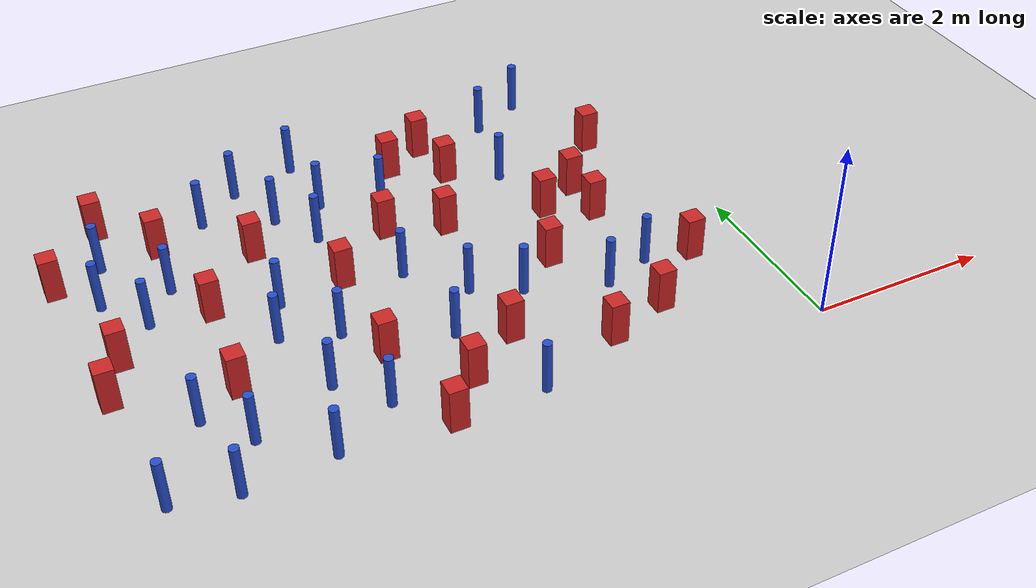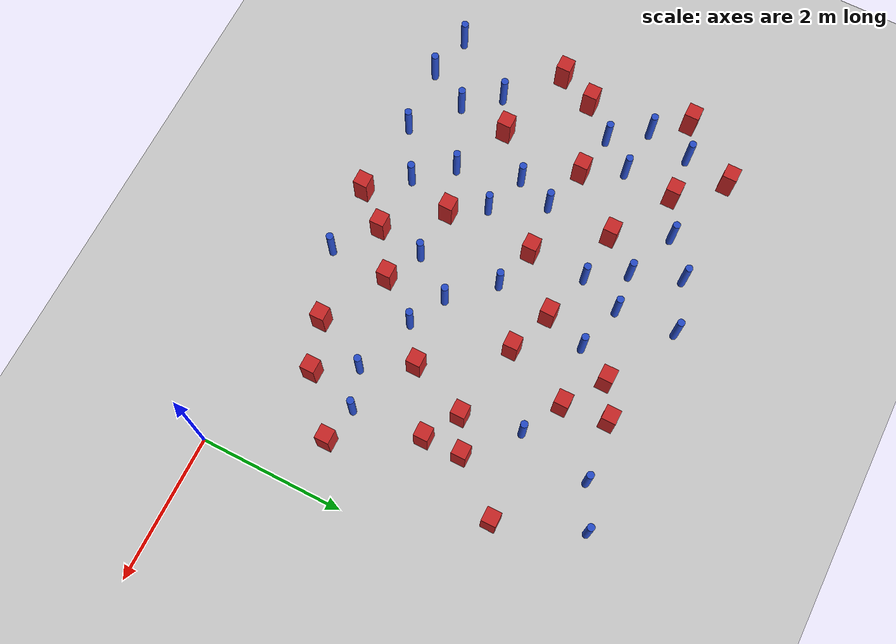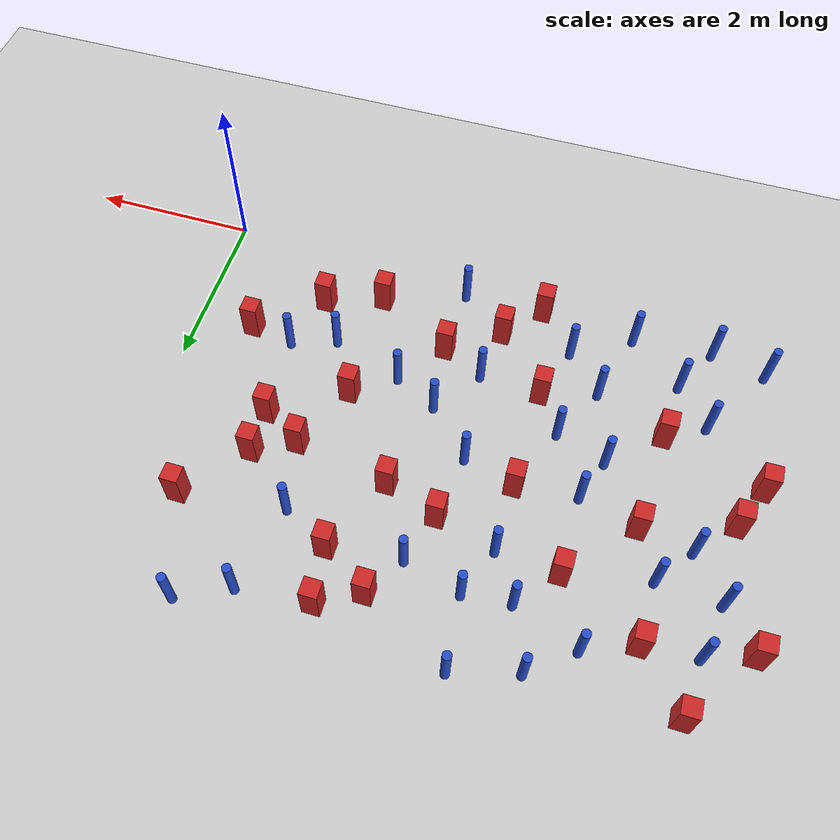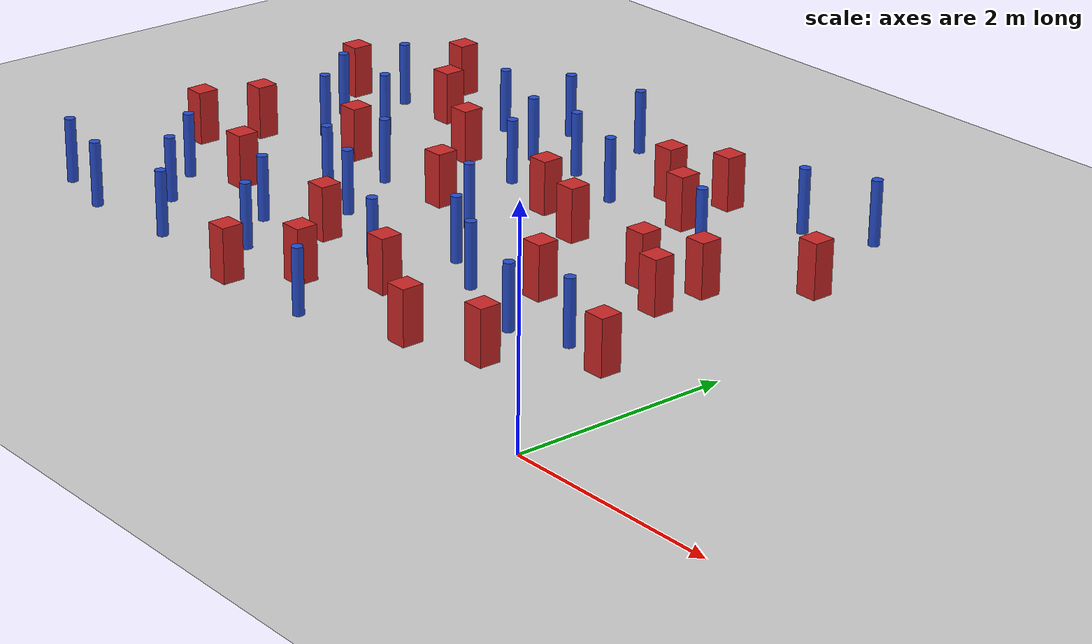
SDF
<sdf version="1.6">
 <world name="default">
  <model name="ground_plane">
   <static>1</static>
   <link name="link">
    <collision name="collision">
     <geometry><plane><normal>0 0 1</normal><size>100 100</size></plane></geometry>
     <surface><friction><ode><mu>100</mu><mu2>50</mu2></ode></friction></surface>
    </collision>
    <visual name="visual">
     <cast_shadows>0</cast_shadows>
     <geometry><plane><normal>0 0 1</normal><size>100 100</size></plane></geometry>
     <material>
      <ambient>1.0 1.0 1.0 1.0</ambient>
      <diffuse>0.8 0.8 0.8 1.0</diffuse>
      <specular>0.01 0.01 0.01 1.000000</specular>
     </material>
    </visual>
   </link>
  </model>
  <model name="square_post_obstacle1">
   <static>true</static>
   <pose>-1.42426274399 0.826658282085 8.22691968438e-08 7.2212513382e-06 -7.54495500217e-07 2.29674213826e-05</pose>
   <link name="link">
    <pose>0 0 0.25 0 -0 0</pose>
    <inertial>
     <mass>100</mass>
     <inertia>
      <ixx>0.166667</ixx>
      <ixy>0</ixy>
      <ixz>0</ixz>
      <iyy>0.166667</iyy>
      <iyz>0</iyz>
      <izz>0.166667</izz>
     </inertia>
    </inertial>
    <collision name="collision"><geometry><box><size>.2 .2 .5</size></box></geometry></collision>
    <visual name="visual">
     <geometry><box><size>.2 .2 .5</size></box></geometry>
     <material>
      <script><name>Gazebo/Red</name><uri>file://media/materials/scripts/gazebo.material</uri></script>
     </material>
    </visual>
   </link>
  </model>
  <model name="pole_obstacle0">
   <static>true</static>
   <pose>-3.10198556302 1.91438541618 2.88873142074e-08 -9.90536689395e-09 4.60219949e-07 -1.20965994953e-07</pose>
   <link name="link">
    <pose>0 0 0.3 0 -0 0</pose>
    <inertial>
     <mass>1</mass>
     <inertia><ixx>0.145833</ixx><ixy>0</ixy><ixz>0</ixz><iyy>0.145833</iyy><iyz>0</iyz><izz>0.125</izz></inertia>
    </inertial>
    <collision name="collision">
     <geometry><cylinder><radius>0.05</radius><length>.6</length></cylinder></geometry>
    </collision>
    <visual name="visual">
     <geometry><cylinder><radius>0.05</radius><length>.6</length></cylinder></geometry>
     <material>
      <script><name>Gazebo/Blue</name><uri>file://media/materials/scripts/gazebo.material</uri></script>
     </material>
    </visual>
   </link>
  </model>
  <model name="square_post_obstacle3">
   <static>true</static>
   <pose>-6.85389334559 1.90299127063 8.22691968438e-08 7.2212513382e-06 -7.54495500217e-07 2.29674213826e-05</pose>
   <link name="link">
    <pose>0 0 0.25 0 -0 0</pose>
    <inertial>
     <mass>100</mass>
     <inertia>
      <ixx>0.166667</ixx>
      <ixy>0</ixy>
      <ixz>0</ixz>
      <iyy>0.166667</iyy>
      <iyz>0</iyz>
      <izz>0.166667</izz>
     </inertia>
    </inertial>
    <collision name="collision"><geometry><box><size>.2 .2 .5</size></box></geometry></collision>
    <visual name="visual">
     <geometry><box><size>.2 .2 .5</size></box></geometry>
     <material>
      <script><name>Gazebo/Red</name><uri>file://media/materials/scripts/gazebo.material</uri></script>
     </material>
    </visual>
   </link>
  </model>
  <model name="pole_obstacle4">
   <static>true</static>
   <pose>-4.5411840801 1.85169963479 2.88873142074e-08 -9.90536689445e-09 4.60219948999e-07 -1.20965994956e-07</pose>
   <link name="link">
    <pose>0 0 0.3 0 -0 0</pose>
    <inertial>
     <mass>1</mass>
     <inertia><ixx>0.145833</ixx><ixy>0</ixy><ixz>0</ixz><iyy>0.145833</iyy><iyz>0</iyz><izz>0.125</izz></inertia>
    </inertial>
    <collision name="collision">
     <geometry><cylinder><radius>0.05</radius><length>.6</length></cylinder></geometry>
    </collision>
    <visual name="visual">
     <geometry><cylinder><radius>0.05</radius><length>.6</length></cylinder></geometry>
     <material>
      <script><name>Gazebo/Blue</name><uri>file://media/materials/scripts/gazebo.material</uri></script>
     </material>
    </visual>
   </link>
  </model>
  <model name="pole_obstacle16">
   <static>true</static>
   <pose>-6.16233238494 1.28427935313 2.88873142074e-08 -9.90536689445e-09 4.60219948999e-07 -1.20965994956e-07</pose>
   <link name="link">
    <pose>0 0 0.3 0 -0 0</pose>
    <inertial>
     <mass>1</mass>
     <inertia><ixx>0.145833</ixx><ixy>0</ixy><ixz>0</ixz><iyy>0.145833</iyy><iyz>0</iyz><izz>0.125</izz></inertia>
    </inertial>
    <collision name="collision">
     <geometry><cylinder><radius>0.05</radius><length>.6</length></cylinder></geometry>
    </collision>
    <visual name="visual">
     <geometry><cylinder><radius>0.05</radius><length>.6</length></cylinder></geometry>
     <material>
      <script><name>Gazebo/Blue</name><uri>file://media/materials/scripts/gazebo.material</uri></script>
     </material>
    </visual>
   </link>
  </model>
  <model name="square_post_obstacle26">
   <static>true</static>
   <pose>-1.76964022569 2.81441040192 8.22691968438e-08 7.2212513382e-06 -7.54495500217e-07 2.29674213826e-05</pose>
   <link name="link">
    <pose>0 0 0.25 0 -0 0</pose>
    <inertial>
     <mass>100</mass>
     <inertia>
      <ixx>0.166667</ixx>
      <ixy>0</ixy>
      <ixz>0</ixz>
      <iyy>0.166667</iyy>
      <iyz>0</iyz>
      <izz>0.166667</izz>
     </inertia>
    </inertial>
    <collision name="collision"><geometry><box><size>.2 .2 .5</size></box></geometry></collision>
    <visual name="visual">
     <geometry><box><size>.2 .2 .5</size></box></geometry>
     <material>
      <script><name>Gazebo/Red</name><uri>file://media/materials/scripts/gazebo.material</uri></script>
     </material>
    </visual>
   </link>
  </model>
  <model name="pole_obstacle19">
   <static>true</static>
   <pose>-5.12947267671 2.06557618258 2.88873142074e-08 -9.90536690245e-09 4.6021994898e-07 -1.20965994966e-07</pose>
   <link name="link">
    <pose>0 0 0.3 0 -0 0</pose>
    <inertial>
     <mass>1</mass>
     <inertia><ixx>0.145833</ixx><ixy>0</ixy><ixz>0</ixz><iyy>0.145833</iyy><iyz>0</iyz><izz>0.125</izz></inertia>
    </inertial>
    <collision name="collision">
     <geometry><cylinder><radius>0.05</radius><length>.6</length></cylinder></geometry>
    </collision>
    <visual name="visual">
     <geometry><cylinder><radius>0.05</radius><length>.6</length></cylinder></geometry>
     <material>
      <script><name>Gazebo/Blue</name><uri>file://media/materials/scripts/gazebo.material</uri></script>
     </material>
    </visual>
   </link>
  </model>
  <model name="pole_obstacle27">
   <static>true</static>
   <pose>-4.79512387402 4.63951117349 2.88873142074e-08 -9.90536690842e-09 4.60219948965e-07 -1.20965994976e-07</pose>
   <link name="link">
    <pose>0 0 0.3 0 -0 0</pose>
    <inertial>
     <mass>1</mass>
     <inertia><ixx>0.145833</ixx><ixy>0</ixy><ixz>0</ixz><iyy>0.145833</iyy><iyz>0</iyz><izz>0.125</izz></inertia>
    </inertial>
    <collision name="collision">
     <geometry><cylinder><radius>0.05</radius><length>.6</length></cylinder></geometry>
    </collision>
    <visual name="visual">
     <geometry><cylinder><radius>0.05</radius><length>.6</length></cylinder></geometry>
     <material>
      <script><name>Gazebo/Blue</name><uri>file://media/materials/scripts/gazebo.material</uri></script>
     </material>
    </visual>
   </link>
  </model>
  <model name="pole_obstacle31">
   <static>true</static>
   <pose>-6.46546573357 3.97374066579 2.88873142074e-08 -9.9053669014e-09 4.60219948982e-07 -1.20965994965e-07</pose>
   <link name="link">
    <pose>0 0 0.3 0 -0 0</pose>
    <inertial>
     <mass>1</mass>
     <inertia><ixx>0.145833</ixx><ixy>0</ixy><ixz>0</ixz><iyy>0.145833</iyy><iyz>0</iyz><izz>0.125</izz></inertia>
    </inertial>
    <collision name="collision">
     <geometry><cylinder><radius>0.05</radius><length>.6</length></cylinder></geometry>
    </collision>
    <visual name="visual">
     <geometry><cylinder><radius>0.05</radius><length>.6</length></cylinder></geometry>
     <material>
      <script><name>Gazebo/Blue</name><uri>file://media/materials/scripts/gazebo.material</uri></script>
     </material>
    </visual>
   </link>
  </model>
  <model name="pole_obstacle36">
   <static>true</static>
   <pose>-1.93711923117 3.62638129155 2.88873142074e-08 -9.90536689791e-09 4.6021994899e-07 -1.20965994959e-07</pose>
   <link name="link">
    <pose>0 0 0.3 0 -0 0</pose>
    <inertial>
     <mass>1</mass>
     <inertia><ixx>0.145833</ixx><ixy>0</ixy><ixz>0</ixz><iyy>0.145833</iyy><iyz>0</iyz><izz>0.125</izz></inertia>
    </inertial>
    <collision name="collision">
     <geometry><cylinder><radius>0.05</radius><length>.6</length></cylinder></geometry>
    </collision>
    <visual name="visual">
     <geometry><cylinder><radius>0.05</radius><length>.6</length></cylinder></geometry>
     <material>
      <script><name>Gazebo/Blue</name><uri>file://media/materials/scripts/gazebo.material</uri></script>
     </material>
    </visual>
   </link>
  </model>
  <model name="square_post_obstacle37">
   <static>true</static>
   <pose>-2.57573918102 4.55098409844 8.22691968438e-08 7.2212513382e-06 -7.54495500217e-07 2.29674213826e-05</pose>
   <link name="link">
    <pose>0 0 0.25 0 -0 0</pose>
    <inertial>
     <mass>100</mass>
     <inertia>
      <ixx>0.166667</ixx>
      <ixy>0</ixy>
      <ixz>0</ixz>
      <iyy>0.166667</iyy>
      <iyz>0</iyz>
      <izz>0.166667</izz>
     </inertia>
    </inertial>
    <collision name="collision"><geometry><box><size>.2 .2 .5</size></box></geometry></collision>
    <visual name="visual">
     <geometry><box><size>.2 .2 .5</size></box></geometry>
     <material>
      <script><name>Gazebo/Red</name><uri>file://media/materials/scripts/gazebo.material</uri></script>
     </material>
    </visual>
   </link>
  </model>
  <model name="pole_obstacle45">
   <static>true</static>
   <pose>-6.71907251581 0.388487332498 2.88873142074e-08 -9.90536689981e-09 4.60219948986e-07 -1.20965994962e-07</pose>
   <link name="link">
    <pose>0 0 0.3 0 -0 0</pose>
    <inertial>
     <mass>1</mass>
     <inertia><ixx>0.145833</ixx><ixy>0</ixy><ixz>0</ixz><iyy>0.145833</iyy><iyz>0</iyz><izz>0.125</izz></inertia>
    </inertial>
    <collision name="collision">
     <geometry><cylinder><radius>0.05</radius><length>.6</length></cylinder></geometry>
    </collision>
    <visual name="visual">
     <geometry><cylinder><radius>0.05</radius><length>.6</length></cylinder></geometry>
     <material>
      <script><name>Gazebo/Blue</name><uri>file://media/materials/scripts/gazebo.material</uri></script>
     </material>
    </visual>
   </link>
  </model>
  <model name="pole_obstacle59">
   <static>true</static>
   <pose>-4.21640281893 3.44719957306 2.88873142074e-08 -9.90536690245e-09 4.6021994898e-07 -1.20965994966e-07</pose>
   <link name="link">
    <pose>0 0 0.3 0 -0 0</pose>
    <inertial>
     <mass>1</mass>
     <inertia><ixx>0.145833</ixx><ixy>0</ixy><ixz>0</ixz><iyy>0.145833</iyy><iyz>0</iyz><izz>0.125</izz></inertia>
    </inertial>
    <collision name="collision">
     <geometry><cylinder><radius>0.05</radius><length>.6</length></cylinder></geometry>
    </collision>
    <visual name="visual">
     <geometry><cylinder><radius>0.05</radius><length>.6</length></cylinder></geometry>
     <material>
      <script><name>Gazebo/Blue</name><uri>file://media/materials/scripts/gazebo.material</uri></script>
     </material>
    </visual>
   </link>
  </model>
  <model name="pole_obstacle63">
   <static>true</static>
   <pose>-4.88427462292 1.19088998244 2.88873142074e-08 -9.90536689445e-09 4.60219948999e-07 -1.20965994956e-07</pose>
   <link name="link">
    <pose>0 0 0.3 0 -0 0</pose>
    <inertial>
     <mass>1</mass>
     <inertia><ixx>0.145833</ixx><ixy>0</ixy><ixz>0</ixz><iyy>0.145833</iyy><iyz>0</iyz><izz>0.125</izz></inertia>
    </inertial>
    <collision name="collision">
     <geometry><cylinder><radius>0.05</radius><length>.6</length></cylinder></geometry>
    </collision>
    <visual name="visual">
     <geometry><cylinder><radius>0.05</radius><length>.6</length></cylinder></geometry>
     <material>
      <script><name>Gazebo/Blue</name><uri>file://media/materials/scripts/gazebo.material</uri></script>
     </material>
    </visual>
   </link>
  </model>
  <model name="square_post_obstacle66">
   <static>true</static>
   <pose>-5.84215359301 4.01528533652 8.22691968438e-08 7.22125133819e-06 -7.54495500217e-07 2.29674213826e-05</pose>
   <link name="link">
    <pose>0 0 0.25 0 -0 0</pose>
    <inertial>
     <mass>100</mass>
     <inertia>
      <ixx>0.166667</ixx>
      <ixy>0</ixy>
      <ixz>0</ixz>
      <iyy>0.166667</iyy>
      <iyz>0</iyz>
      <izz>0.166667</izz>
     </inertia>
    </inertial>
    <collision name="collision"><geometry><box><size>.2 .2 .5</size></box></geometry></collision>
    <visual name="visual">
     <geometry><box><size>.2 .2 .5</size></box></geometry>
     <material>
      <script><name>Gazebo/Red</name><uri>file://media/materials/scripts/gazebo.material</uri></script>
     </material>
    </visual>
   </link>
  </model>
  <model name="square_post_obstacle71">
   <static>true</static>
   <pose>-3.51349161769 3.2437419657 8.22691968438e-08 7.2212513382e-06 -7.54495500217e-07 2.29674213826e-05</pose>
   <link name="link">
    <pose>0 0 0.25 0 -0 0</pose>
    <inertial>
     <mass>100</mass>
     <inertia>
      <ixx>0.166667</ixx>
      <ixy>0</ixy>
      <ixz>0</ixz>
      <iyy>0.166667</iyy>
      <iyz>0</iyz>
      <izz>0.166667</izz>
     </inertia>
    </inertial>
    <collision name="collision"><geometry><box><size>.2 .2 .5</size></box></geometry></collision>
    <visual name="visual">
     <geometry><box><size>.2 .2 .5</size></box></geometry>
     <material>
      <script><name>Gazebo/Red</name><uri>file://media/materials/scripts/gazebo.material</uri></script>
     </material>
    </visual>
   </link>
  </model>
  <model name="pole_obstacle68">
   <static>true</static>
   <pose>-1.21125961016 1.53640758501 2.88873142074e-08 -9.90536689672e-09 4.60219948993e-07 -1.20965994959e-07</pose>
   <link name="link">
    <pose>0 0 0.3 0 -0 0</pose>
    <inertial>
     <mass>1</mass>
     <inertia><ixx>0.145833</ixx><ixy>0</ixy><ixz>0</ixz><iyy>0.145833</iyy><iyz>0</iyz><izz>0.125</izz></inertia>
    </inertial>
    <collision name="collision">
     <geometry><cylinder><radius>0.05</radius><length>.6</length></cylinder></geometry>
    </collision>
    <visual name="visual">
     <geometry><cylinder><radius>0.05</radius><length>.6</length></cylinder></geometry>
     <material>
      <script><name>Gazebo/Blue</name><uri>file://media/materials/scripts/gazebo.material</uri></script>
     </material>
    </visual>
   </link>
  </model>
  <model name="pole_obstacle70">
   <static>true</static>
   <pose>-4.45711774475 0.713366703815 2.88873142074e-08 -9.90536689837e-09 4.60219948989e-07 -1.2096599496e-07</pose>
   <link name="link">
    <pose>0 0 0.3 0 -0 0</pose>
    <inertial>
     <mass>1</mass>
     <inertia><ixx>0.145833</ixx><ixy>0</ixy><ixz>0</ixz><iyy>0.145833</iyy><iyz>0</iyz><izz>0.125</izz></inertia>
    </inertial>
    <collision name="collision">
     <geometry><cylinder><radius>0.05</radius><length>.6</length></cylinder></geometry>
    </collision>
    <visual name="visual">
     <geometry><cylinder><radius>0.05</radius><length>.6</length></cylinder></geometry>
     <material>
      <script><name>Gazebo/Blue</name><uri>file://media/materials/scripts/gazebo.material</uri></script>
     </material>
    </visual>
   </link>
  </model>
  <model name="pole_obstacle86">
   <static>true</static>
   <pose>-3.32503233563 3.82724878798 2.88873142074e-08 -9.90536690232e-09 4.6021994898e-07 -1.20965994968e-07</pose>
   <link name="link">
    <pose>0 0 0.3 0 -0 0</pose>
    <inertial>
     <mass>1</mass>
     <inertia><ixx>0.145833</ixx><ixy>0</ixy><ixz>0</ixz><iyy>0.145833</iyy><iyz>0</iyz><izz>0.125</izz></inertia>
    </inertial>
    <collision name="collision">
     <geometry><cylinder><radius>0.05</radius><length>.6</length></cylinder></geometry>
    </collision>
    <visual name="visual">
     <geometry><cylinder><radius>0.05</radius><length>.6</length></cylinder></geometry>
     <material>
      <script><name>Gazebo/Blue</name><uri>file://media/materials/scripts/gazebo.material</uri></script>
     </material>
    </visual>
   </link>
  </model>
  <model name="pole_obstacle90">
   <static>true</static>
   <pose>-1.73149620242 4.63559940414 2.88873142074e-08 -9.90536689852e-09 4.60219948989e-07 -1.2096599496e-07</pose>
   <link name="link">
    <pose>0 0 0.3 0 -0 0</pose>
    <inertial>
     <mass>1</mass>
     <inertia><ixx>0.145833</ixx><ixy>0</ixy><ixz>0</ixz><iyy>0.145833</iyy><iyz>0</iyz><izz>0.125</izz></inertia>
    </inertial>
    <collision name="collision">
     <geometry><cylinder><radius>0.05</radius><length>.6</length></cylinder></geometry>
    </collision>
    <visual name="visual">
     <geometry><cylinder><radius>0.05</radius><length>.6</length></cylinder></geometry>
     <material>
      <script><name>Gazebo/Blue</name><uri>file://media/materials/scripts/gazebo.material</uri></script>
     </material>
    </visual>
   </link>
  </model>
  <model name="square_post_obstacle86">
   <static>true</static>
   <pose>-2.49105803448 3.92393894356 8.22691968438e-08 7.2212513382e-06 -7.54495500217e-07 2.29674213826e-05</pose>
   <link name="link">
    <pose>0 0 0.25 0 -0 0</pose>
    <inertial>
     <mass>100</mass>
     <inertia>
      <ixx>0.166667</ixx>
      <ixy>0</ixy>
      <ixz>0</ixz>
      <iyy>0.166667</iyy>
      <iyz>0</iyz>
      <izz>0.166667</izz>
     </inertia>
    </inertial>
    <collision name="collision"><geometry><box><size>.2 .2 .5</size></box></geometry></collision>
    <visual name="visual">
     <geometry><box><size>.2 .2 .5</size></box></geometry>
     <material>
      <script><name>Gazebo/Red</name><uri>file://media/materials/scripts/gazebo.material</uri></script>
     </material>
    </visual>
   </link>
  </model>
  <model name="pole_obstacle101">
   <static>true</static>
   <pose>-3.04806088359 0.234984153246 2.88873142074e-08 -9.90536689395e-09 4.60219949e-07 -1.20965994954e-07</pose>
   <link name="link">
    <pose>0 0 0.3 0 -0 0</pose>
    <inertial>
     <mass>1</mass>
     <inertia><ixx>0.145833</ixx><ixy>0</ixy><ixz>0</ixz><iyy>0.145833</iyy><iyz>0</iyz><izz>0.125</izz></inertia>
    </inertial>
    <collision name="collision">
     <geometry><cylinder><radius>0.05</radius><length>.6</length></cylinder></geometry>
    </collision>
    <visual name="visual">
     <geometry><cylinder><radius>0.05</radius><length>.6</length></cylinder></geometry>
     <material>
      <script><name>Gazebo/Blue</name><uri>file://media/materials/scripts/gazebo.material</uri></script>
     </material>
    </visual>
   </link>
  </model>
  <model name="square_post_obstacle91">
   <static>true</static>
   <pose>-4.24121876528 1.38365301854 8.22691968438e-08 7.2212513382e-06 -7.54495500217e-07 2.29674213826e-05</pose>
   <link name="link">
    <pose>0 0 0.25 0 -0 0</pose>
    <inertial>
     <mass>100</mass>
     <inertia>
      <ixx>0.166667</ixx>
      <ixy>0</ixy>
      <ixz>0</ixz>
      <iyy>0.166667</iyy>
      <iyz>0</iyz>
      <izz>0.166667</izz>
     </inertia>
    </inertial>
    <collision name="collision"><geometry><box><size>.2 .2 .5</size></box></geometry></collision>
    <visual name="visual">
     <geometry><box><size>.2 .2 .5</size></box></geometry>
     <material>
      <script><name>Gazebo/Red</name><uri>file://media/materials/scripts/gazebo.material</uri></script>
     </material>
    </visual>
   </link>
  </model>
  <model name="pole_obstacle111">
   <static>true</static>
   <pose>-4.06190004986 4.84540570481 2.88873142074e-08 -9.90536690842e-09 4.60219948965e-07 -1.20965994976e-07</pose>
   <link name="link">
    <pose>0 0 0.3 0 -0 0</pose>
    <inertial>
     <mass>1</mass>
     <inertia><ixx>0.145833</ixx><ixy>0</ixy><ixz>0</ixz><iyy>0.145833</iyy><iyz>0</iyz><izz>0.125</izz></inertia>
    </inertial>
    <collision name="collision">
     <geometry><cylinder><radius>0.05</radius><length>.6</length></cylinder></geometry>
    </collision>
    <visual name="visual">
     <geometry><cylinder><radius>0.05</radius><length>.6</length></cylinder></geometry>
     <material>
      <script><name>Gazebo/Blue</name><uri>file://media/materials/scripts/gazebo.material</uri></script>
     </material>
    </visual>
   </link>
  </model>
  <model name="pole_obstacle112">
   <static>true</static>
   <pose>-6.60742582105 3.34977048117 2.88873142074e-08 -9.90536690245e-09 4.6021994898e-07 -1.20965994966e-07</pose>
   <link name="link">
    <pose>0 0 0.3 0 -0 0</pose>
    <inertial>
     <mass>1</mass>
     <inertia><ixx>0.145833</ixx><ixy>0</ixy><ixz>0</ixz><iyy>0.145833</iyy><iyz>0</iyz><izz>0.125</izz></inertia>
    </inertial>
    <collision name="collision">
     <geometry><cylinder><radius>0.05</radius><length>.6</length></cylinder></geometry>
    </collision>
    <visual name="visual">
     <geometry><cylinder><radius>0.05</radius><length>.6</length></cylinder></geometry>
     <material>
      <script><name>Gazebo/Blue</name><uri>file://media/materials/scripts/gazebo.material</uri></script>
     </material>
    </visual>
   </link>
  </model>
  <model name="square_post_obstacle101">
   <static>true</static>
   <pose>-6.36800872517 4.61518499207 8.22691968438e-08 7.2212513382e-06 -7.54495500217e-07 2.29674213826e-05</pose>
   <link name="link">
    <pose>0 0 0.25 0 -0 0</pose>
    <inertial>
     <mass>100</mass>
     <inertia>
      <ixx>0.166667</ixx>
      <ixy>0</ixy>
      <ixz>0</ixz>
      <iyy>0.166667</iyy>
      <iyz>0</iyz>
      <izz>0.166667</izz>
     </inertia>
    </inertial>
    <collision name="collision"><geometry><box><size>.2 .2 .5</size></box></geometry></collision>
    <visual name="visual">
     <geometry><box><size>.2 .2 .5</size></box></geometry>
     <material>
      <script><name>Gazebo/Red</name><uri>file://media/materials/scripts/gazebo.material</uri></script>
     </material>
    </visual>
   </link>
  </model>
  <model name="pole_obstacle114">
   <static>true</static>
   <pose>-3.61975114169 2.4682334541 2.88873142074e-08 -9.90536690232e-09 4.6021994898e-07 -1.20965994968e-07</pose>
   <link name="link">
    <pose>0 0 0.3 0 -0 0</pose>
    <inertial>
     <mass>1</mass>
     <inertia><ixx>0.145833</ixx><ixy>0</ixy><ixz>0</ixz><iyy>0.145833</iyy><iyz>0</iyz><izz>0.125</izz></inertia>
    </inertial>
    <collision name="collision">
     <geometry><cylinder><radius>0.05</radius><length>.6</length></cylinder></geometry>
    </collision>
    <visual name="visual">
     <geometry><cylinder><radius>0.05</radius><length>.6</length></cylinder></geometry>
     <material>
      <script><name>Gazebo/Blue</name><uri>file://media/materials/scripts/gazebo.material</uri></script>
     </material>
    </visual>
   </link>
  </model>
  <model name="square_post_obstacle102">
   <static>true</static>
   <pose>-6.62942644907 2.41418605992 8.22691968438e-08 7.2212513382e-06 -7.54495500217e-07 2.29674213826e-05</pose>
   <link name="link">
    <pose>0 0 0.25 0 -0 0</pose>
    <inertial>
     <mass>100</mass>
     <inertia>
      <ixx>0.166667</ixx>
      <ixy>0</ixy>
      <ixz>0</ixz>
      <iyy>0.166667</iyy>
      <iyz>0</iyz>
      <izz>0.166667</izz>
     </inertia>
    </inertial>
    <collision name="collision"><geometry><box><size>.2 .2 .5</size></box></geometry></collision>
    <visual name="visual">
     <geometry><box><size>.2 .2 .5</size></box></geometry>
     <material>
      <script><name>Gazebo/Red</name><uri>file://media/materials/scripts/gazebo.material</uri></script>
     </material>
    </visual>
   </link>
  </model>
  <model name="pole_obstacle116">
   <static>true</static>
   <pose>-6.23108902852 2.85374113189 2.88873142074e-08 -9.90536690245e-09 4.6021994898e-07 -1.20965994966e-07</pose>
   <link name="link">
    <pose>0 0 0.3 0 -0 0</pose>
    <inertial>
     <mass>1</mass>
     <inertia><ixx>0.145833</ixx><ixy>0</ixy><ixz>0</ixz><iyy>0.145833</iyy><iyz>0</iyz><izz>0.125</izz></inertia>
    </inertial>
    <collision name="collision">
     <geometry><cylinder><radius>0.05</radius><length>.6</length></cylinder></geometry>
    </collision>
    <visual name="visual">
     <geometry><cylinder><radius>0.05</radius><length>.6</length></cylinder></geometry>
     <material>
      <script><name>Gazebo/Blue</name><uri>file://media/materials/scripts/gazebo.material</uri></script>
     </material>
    </visual>
   </link>
  </model>
  <model name="pole_obstacle123">
   <static>true</static>
   <pose>-1.74195878696 1.3541090188 2.88873142074e-08 -9.90536689672e-09 4.60219948993e-07 -1.20965994959e-07</pose>
   <link name="link">
    <pose>0 0 0.3 0 -0 0</pose>
    <inertial>
     <mass>1</mass>
     <inertia><ixx>0.145833</ixx><ixy>0</ixy><ixz>0</ixz><iyy>0.145833</iyy><iyz>0</iyz><izz>0.125</izz></inertia>
    </inertial>
    <collision name="collision">
     <geometry><cylinder><radius>0.05</radius><length>.6</length></cylinder></geometry>
    </collision>
    <visual name="visual">
     <geometry><cylinder><radius>0.05</radius><length>.6</length></cylinder></geometry>
     <material>
      <script><name>Gazebo/Blue</name><uri>file://media/materials/scripts/gazebo.material</uri></script>
     </material>
    </visual>
   </link>
  </model>
  <model name="pole_obstacle128">
   <static>true</static>
   <pose>-5.14320605661 0.311605538535 2.88873142074e-08 -9.90536689981e-09 4.60219948986e-07 -1.20965994962e-07</pose>
   <link name="link">
    <pose>0 0 0.3 0 -0 0</pose>
    <inertial>
     <mass>1</mass>
     <inertia><ixx>0.145833</ixx><ixy>0</ixy><ixz>0</ixz><iyy>0.145833</iyy><iyz>0</iyz><izz>0.125</izz></inertia>
    </inertial>
    <collision name="collision">
     <geometry><cylinder><radius>0.05</radius><length>.6</length></cylinder></geometry>
    </collision>
    <visual name="visual">
     <geometry><cylinder><radius>0.05</radius><length>.6</length></cylinder></geometry>
     <material>
      <script><name>Gazebo/Blue</name><uri>file://media/materials/scripts/gazebo.material</uri></script>
     </material>
    </visual>
   </link>
  </model>
  <model name="pole_obstacle131">
   <static>true</static>
   <pose>-2.59372006839 1.65582033835 2.88873142074e-08 -9.90536689395e-09 4.60219949e-07 -1.20965994953e-07</pose>
   <link name="link">
    <pose>0 0 0.3 0 -0 0</pose>
    <inertial>
     <mass>1</mass>
     <inertia><ixx>0.145833</ixx><ixy>0</ixy><ixz>0</ixz><iyy>0.145833</iyy><iyz>0</iyz><izz>0.125</izz></inertia>
    </inertial>
    <collision name="collision">
     <geometry><cylinder><radius>0.05</radius><length>.6</length></cylinder></geometry>
    </collision>
    <visual name="visual">
     <geometry><cylinder><radius>0.05</radius><length>.6</length></cylinder></geometry>
     <material>
      <script><name>Gazebo/Blue</name><uri>file://media/materials/scripts/gazebo.material</uri></script>
     </material>
    </visual>
   </link>
  </model>
  <model name="square_post_obstacle133">
   <static>true</static>
   <pose>-4.92996381311 3.4990079151 8.22691968438e-08 7.2212513382e-06 -7.54495500217e-07 2.29674213826e-05</pose>
   <link name="link">
    <pose>0 0 0.25 0 -0 0</pose>
    <inertial>
     <mass>100</mass>
     <inertia>
      <ixx>0.166667</ixx>
      <ixy>0</ixy>
      <ixz>0</ixz>
      <iyy>0.166667</iyy>
      <iyz>0</iyz>
      <izz>0.166667</izz>
     </inertia>
    </inertial>
    <collision name="collision"><geometry><box><size>.2 .2 .5</size></box></geometry></collision>
    <visual name="visual">
     <geometry><box><size>.2 .2 .5</size></box></geometry>
     <material>
      <script><name>Gazebo/Red</name><uri>file://media/materials/scripts/gazebo.material</uri></script>
     </material>
    </visual>
   </link>
  </model>
  <model name="square_post_obstacle136">
   <static>true</static>
   <pose>-3.01512762377 1.08944023618 8.22691968438e-08 7.2212513382e-06 -7.54495500217e-07 2.29674213826e-05</pose>
   <link name="link">
    <pose>0 0 0.25 0 -0 0</pose>
    <inertial>
     <mass>100</mass>
     <inertia>
      <ixx>0.166667</ixx>
      <ixy>0</ixy>
      <ixz>0</ixz>
      <iyy>0.166667</iyy>
      <iyz>0</iyz>
      <izz>0.166667</izz>
     </inertia>
    </inertial>
    <collision name="collision"><geometry><box><size>.2 .2 .5</size></box></geometry></collision>
    <visual name="visual">
     <geometry><box><size>.2 .2 .5</size></box></geometry>
     <material>
      <script><name>Gazebo/Red</name><uri>file://media/materials/scripts/gazebo.material</uri></script>
     </material>
    </visual>
   </link>
  </model>
  <model name="pole_obstacle152">
   <static>true</static>
   <pose>-4.94615814379 2.56754879486 2.88873142074e-08 -9.90536690245e-09 4.6021994898e-07 -1.20965994966e-07</pose>
   <link name="link">
    <pose>0 0 0.3 0 -0 0</pose>
    <inertial>
     <mass>1</mass>
     <inertia><ixx>0.145833</ixx><ixy>0</ixy><ixz>0</ixz><iyy>0.145833</iyy><iyz>0</iyz><izz>0.125</izz></inertia>
    </inertial>
    <collision name="collision">
     <geometry><cylinder><radius>0.05</radius><length>.6</length></cylinder></geometry>
    </collision>
    <visual name="visual">
     <geometry><cylinder><radius>0.05</radius><length>.6</length></cylinder></geometry>
     <material>
      <script><name>Gazebo/Blue</name><uri>file://media/materials/scripts/gazebo.material</uri></script>
     </material>
    </visual>
   </link>
  </model>
  <model name="square_post_obstacle143">
   <static>true</static>
   <pose>-1.31029692722 3.05932030131 8.22691968438e-08 7.2212513382e-06 -7.54495500217e-07 2.29674213826e-05</pose>
   <link name="link">
    <pose>0 0 0.25 0 -0 0</pose>
    <inertial>
     <mass>100</mass>
     <inertia>
      <ixx>0.166667</ixx>
      <ixy>0</ixy>
      <ixz>0</ixz>
      <iyy>0.166667</iyy>
      <iyz>0</iyz>
      <izz>0.166667</izz>
     </inertia>
    </inertial>
    <collision name="collision"><geometry><box><size>.2 .2 .5</size></box></geometry></collision>
    <visual name="visual">
     <geometry><box><size>.2 .2 .5</size></box></geometry>
     <material>
      <script><name>Gazebo/Red</name><uri>file://media/materials/scripts/gazebo.material</uri></script>
     </material>
    </visual>
   </link>
  </model>
  <model name="square_post_obstacle147">
   <static>true</static>
   <pose>-4.22793202719 2.63924378233 8.22691968438e-08 7.2212513382e-06 -7.54495500217e-07 2.29674213826e-05</pose>
   <link name="link">
    <pose>0 0 0.25 0 -0 0</pose>
    <inertial>
     <mass>100</mass>
     <inertia>
      <ixx>0.166667</ixx>
      <ixy>0</ixy>
      <ixz>0</ixz>
      <iyy>0.166667</iyy>
      <iyz>0</iyz>
      <izz>0.166667</izz>
     </inertia>
    </inertial>
    <collision name="collision"><geometry><box><size>.2 .2 .5</size></box></geometry></collision>
    <visual name="visual">
     <geometry><box><size>.2 .2 .5</size></box></geometry>
     <material>
      <script><name>Gazebo/Red</name><uri>file://media/materials/scripts/gazebo.material</uri></script>
     </material>
    </visual>
   </link>
  </model>
  <model name="square_post_obstacle150">
   <static>true</static>
   <pose>-5.61101605129 2.7461763615 8.22691968438e-08 7.2212513382e-06 -7.54495500217e-07 2.29674213826e-05</pose>
   <link name="link">
    <pose>0 0 0.25 0 -0 0</pose>
    <inertial>
     <mass>100</mass>
     <inertia>
      <ixx>0.166667</ixx>
      <ixy>0</ixy>
      <ixz>0</ixz>
      <iyy>0.166667</iyy>
      <iyz>0</iyz>
      <izz>0.166667</izz>
     </inertia>
    </inertial>
    <collision name="collision"><geometry><box><size>.2 .2 .5</size></box></geometry></collision>
    <visual name="visual">
     <geometry><box><size>.2 .2 .5</size></box></geometry>
     <material>
      <script><name>Gazebo/Red</name><uri>file://media/materials/scripts/gazebo.material</uri></script>
     </material>
    </visual>
   </link>
  </model>
  <model name="square_post_obstacle152">
   <static>true</static>
   <pose>-0.728226573016 3.76911247712 8.22691968438e-08 7.2212513382e-06 -7.54495500217e-07 2.29674213826e-05</pose>
   <link name="link">
    <pose>0 0 0.25 0 -0 0</pose>
    <inertial>
     <mass>100</mass>
     <inertia>
      <ixx>0.166667</ixx>
      <ixy>0</ixy>
      <ixz>0</ixz>
      <iyy>0.166667</iyy>
      <iyz>0</iyz>
      <izz>0.166667</izz>
     </inertia>
    </inertial>
    <collision name="collision"><geometry><box><size>.2 .2 .5</size></box></geometry></collision>
    <visual name="visual">
     <geometry><box><size>.2 .2 .5</size></box></geometry>
     <material>
      <script><name>Gazebo/Red</name><uri>file://media/materials/scripts/gazebo.material</uri></script>
     </material>
    </visual>
   </link>
  </model>
  <model name="pole_obstacle167">
   <static>true</static>
   <pose>-3.51189945192 1.34040906664 2.88873142074e-08 -9.90536691123e-09 4.60219948959e-07 -1.20965994982e-07</pose>
   <link name="link">
    <pose>0 0 0.3 0 -0 0</pose>
    <inertial>
     <mass>1</mass>
     <inertia><ixx>0.145833</ixx><ixy>0</ixy><ixz>0</ixz><iyy>0.145833</iyy><iyz>0</iyz><izz>0.125</izz></inertia>
    </inertial>
    <collision name="collision">
     <geometry><cylinder><radius>0.05</radius><length>.6</length></cylinder></geometry>
    </collision>
    <visual name="visual">
     <geometry><cylinder><radius>0.05</radius><length>.6</length></cylinder></geometry>
     <material>
      <script><name>Gazebo/Blue</name><uri>file://media/materials/scripts/gazebo.material</uri></script>
     </material>
    </visual>
   </link>
  </model>
  <model name="pole_obstacle172">
   <static>true</static>
   <pose>-5.89111019596 3.29576438396 2.88873142074e-08 -9.90536690245e-09 4.6021994898e-07 -1.20965994966e-07</pose>
   <link name="link">
    <pose>0 0 0.3 0 -0 0</pose>
    <inertial>
     <mass>1</mass>
     <inertia><ixx>0.145833</ixx><ixy>0</ixy><ixz>0</ixz><iyy>0.145833</iyy><iyz>0</iyz><izz>0.125</izz></inertia>
    </inertial>
    <collision name="collision">
     <geometry><cylinder><radius>0.05</radius><length>.6</length></cylinder></geometry>
    </collision>
    <visual name="visual">
     <geometry><cylinder><radius>0.05</radius><length>.6</length></cylinder></geometry>
     <material>
      <script><name>Gazebo/Blue</name><uri>file://media/materials/scripts/gazebo.material</uri></script>
     </material>
    </visual>
   </link>
  </model>
  <model name="pole_obstacle181">
   <static>true</static>
   <pose>-4.5363894414 3.96464993277 2.88873142074e-08 -9.9053669014e-09 4.60219948982e-07 -1.20965994965e-07</pose>
   <link name="link">
    <pose>0 0 0.3 0 -0 0</pose>
    <inertial>
     <mass>1</mass>
     <inertia><ixx>0.145833</ixx><ixy>0</ixy><ixz>0</ixz><iyy>0.145833</iyy><iyz>0</iyz><izz>0.125</izz></inertia>
    </inertial>
    <collision name="collision">
     <geometry><cylinder><radius>0.05</radius><length>.6</length></cylinder></geometry>
    </collision>
    <visual name="visual">
     <geometry><cylinder><radius>0.05</radius><length>.6</length></cylinder></geometry>
     <material>
      <script><name>Gazebo/Blue</name><uri>file://media/materials/scripts/gazebo.material</uri></script>
     </material>
    </visual>
   </link>
  </model>
  <model name="pole_obstacle183">
   <static>true</static>
   <pose>-3.99469053717 4.01692522575 2.88873142074e-08 -9.90536689354e-09 4.60219949001e-07 -1.20965994954e-07</pose>
   <link name="link">
    <pose>0 0 0.3 0 -0 0</pose>
    <inertial>
     <mass>1</mass>
     <inertia><ixx>0.145833</ixx><ixy>0</ixy><ixz>0</ixz><iyy>0.145833</iyy><iyz>0</iyz><izz>0.125</izz></inertia>
    </inertial>
    <collision name="collision">
     <geometry><cylinder><radius>0.05</radius><length>.6</length></cylinder></geometry>
    </collision>
    <visual name="visual">
     <geometry><cylinder><radius>0.05</radius><length>.6</length></cylinder></geometry>
     <material>
      <script><name>Gazebo/Blue</name><uri>file://media/materials/scripts/gazebo.material</uri></script>
     </material>
    </visual>
   </link>
  </model>
  <model name="square_post_obstacle173">
   <static>true</static>
   <pose>-4.01695612501 0.206363895682 8.22691968438e-08 7.22125133819e-06 -7.54495500217e-07 2.29674213826e-05</pose>
   <link name="link">
    <pose>0 0 0.25 0 -0 0</pose>
    <inertial>
     <mass>100</mass>
     <inertia>
      <ixx>0.166667</ixx>
      <ixy>0</ixy>
      <ixz>0</ixz>
      <iyy>0.166667</iyy>
      <iyz>0</iyz>
      <izz>0.166667</izz>
     </inertia>
    </inertial>
    <collision name="collision"><geometry><box><size>.2 .2 .5</size></box></geometry></collision>
    <visual name="visual">
     <geometry><box><size>.2 .2 .5</size></box></geometry>
     <material>
      <script><name>Gazebo/Red</name><uri>file://media/materials/scripts/gazebo.material</uri></script>
     </material>
    </visual>
   </link>
  </model>
  <model name="pole_obstacle188">
   <static>true</static>
   <pose>-5.28254453047 4.25125340206 2.88873142074e-08 -9.90536690842e-09 4.60219948965e-07 -1.20965994976e-07</pose>
   <link name="link">
    <pose>0 0 0.3 0 -0 0</pose>
    <inertial>
     <mass>1</mass>
     <inertia><ixx>0.145833</ixx><ixy>0</ixy><ixz>0</ixz><iyy>0.145833</iyy><iyz>0</iyz><izz>0.125</izz></inertia>
    </inertial>
    <collision name="collision">
     <geometry><cylinder><radius>0.05</radius><length>.6</length></cylinder></geometry>
    </collision>
    <visual name="visual">
     <geometry><cylinder><radius>0.05</radius><length>.6</length></cylinder></geometry>
     <material>
      <script><name>Gazebo/Blue</name><uri>file://media/materials/scripts/gazebo.material</uri></script>
     </material>
    </visual>
   </link>
  </model>
  <model name="square_post_obstacle208">
   <static>true</static>
   <pose>-2.10082952013 0.594204580054 8.22691968438e-08 7.2212513382e-06 -7.54495500217e-07 2.29674213826e-05</pose>
   <link name="link">
    <pose>0 0 0.25 0 -0 0</pose>
    <inertial>
     <mass>100</mass>
     <inertia>
      <ixx>0.166667</ixx>
      <ixy>0</ixy>
      <ixz>0</ixz>
      <iyy>0.166667</iyy>
      <iyz>0</iyz>
      <izz>0.166667</izz>
     </inertia>
    </inertial>
    <collision name="collision"><geometry><box><size>.2 .2 .5</size></box></geometry></collision>
    <visual name="visual">
     <geometry><box><size>.2 .2 .5</size></box></geometry>
     <material>
      <script><name>Gazebo/Red</name><uri>file://media/materials/scripts/gazebo.material</uri></script>
     </material>
    </visual>
   </link>
  </model>
  <model name="square_post_obstacle215">
   <static>true</static>
   <pose>-5.70305374074 1.54492228836 8.22691968438e-08 7.2212513382e-06 -7.54495500217e-07 2.29674213826e-05</pose>
   <link name="link">
    <pose>0 0 0.25 0 -0 0</pose>
    <inertial>
     <mass>100</mass>
     <inertia>
      <ixx>0.166667</ixx>
      <ixy>0</ixy>
      <ixz>0</ixz>
      <iyy>0.166667</iyy>
      <iyz>0</iyz>
      <izz>0.166667</izz>
     </inertia>
    </inertial>
    <collision name="collision"><geometry><box><size>.2 .2 .5</size></box></geometry></collision>
    <visual name="visual">
     <geometry><box><size>.2 .2 .5</size></box></geometry>
     <material>
      <script><name>Gazebo/Red</name><uri>file://media/materials/scripts/gazebo.material</uri></script>
     </material>
    </visual>
   </link>
  </model>
  <model name="square_post_obstacle217">
   <static>true</static>
   <pose>-1.29821198787 2.5317019154 8.22691968438e-08 7.2212513382e-06 -7.54495500217e-07 2.29674213826e-05</pose>
   <link name="link">
    <pose>0 0 0.25 0 -0 0</pose>
    <inertial>
     <mass>100</mass>
     <inertia>
      <ixx>0.166667</ixx>
      <ixy>0</ixy>
      <ixz>0</ixz>
      <iyy>0.166667</iyy>
      <iyz>0</iyz>
      <izz>0.166667</izz>
     </inertia>
    </inertial>
    <collision name="collision"><geometry><box><size>.2 .2 .5</size></box></geometry></collision>
    <visual name="visual">
     <geometry><box><size>.2 .2 .5</size></box></geometry>
     <material>
      <script><name>Gazebo/Red</name><uri>file://media/materials/scripts/gazebo.material</uri></script>
     </material>
    </visual>
   </link>
  </model>
  <model name="square_post_obstacle219">
   <static>true</static>
   <pose>-0.703259075755 1.43750402384 8.22691968438e-08 7.2212513382e-06 -7.54495500217e-07 2.29674213826e-05</pose>
   <link name="link">
    <pose>0 0 0.25 0 -0 0</pose>
    <inertial>
     <mass>100</mass>
     <inertia>
      <ixx>0.166667</ixx>
      <ixy>0</ixy>
      <ixz>0</ixz>
      <iyy>0.166667</iyy>
      <iyz>0</iyz>
      <izz>0.166667</izz>
     </inertia>
    </inertial>
    <collision name="collision"><geometry><box><size>.2 .2 .5</size></box></geometry></collision>
    <visual name="visual">
     <geometry><box><size>.2 .2 .5</size></box></geometry>
     <material>
      <script><name>Gazebo/Red</name><uri>file://media/materials/scripts/gazebo.material</uri></script>
     </material>
    </visual>
   </link>
  </model>
  <model name="square_post_obstacle220">
   <static>true</static>
   <pose>-2.88541486898 3.01535309623 8.22691968438e-08 7.2212513382e-06 -7.54495500217e-07 2.29674213826e-05</pose>
   <link name="link">
    <pose>0 0 0.25 0 -0 0</pose>
    <inertial>
     <mass>100</mass>
     <inertia>
      <ixx>0.166667</ixx>
      <ixy>0</ixy>
      <ixz>0</ixz>
      <iyy>0.166667</iyy>
      <iyz>0</iyz>
      <izz>0.166667</izz>
     </inertia>
    </inertial>
    <collision name="collision"><geometry><box><size>.2 .2 .5</size></box></geometry></collision>
    <visual name="visual">
     <geometry><box><size>.2 .2 .5</size></box></geometry>
     <material>
      <script><name>Gazebo/Red</name><uri>file://media/materials/scripts/gazebo.material</uri></script>
     </material>
    </visual>
   </link>
  </model>
  <model name="square_post_obstacle221">
   <static>true</static>
   <pose>-2.11516957469 1.99903778691 8.22691968438e-08 7.2212513382e-06 -7.54495500217e-07 2.29674213826e-05</pose>
   <link name="link">
    <pose>0 0 0.25 0 -0 0</pose>
    <inertial>
     <mass>100</mass>
     <inertia>
      <ixx>0.166667</ixx>
      <ixy>0</ixy>
      <ixz>0</ixz>
      <iyy>0.166667</iyy>
      <iyz>0</iyz>
      <izz>0.166667</izz>
     </inertia>
    </inertial>
    <collision name="collision"><geometry><box><size>.2 .2 .5</size></box></geometry></collision>
    <visual name="visual">
     <geometry><box><size>.2 .2 .5</size></box></geometry>
     <material>
      <script><name>Gazebo/Red</name><uri>file://media/materials/scripts/gazebo.material</uri></script>
     </material>
    </visual>
   </link>
  </model>
  <model name="square_post_obstacle223">
   <static>true</static>
   <pose>-6.98420468122 3.79124582827 8.22691968438e-08 7.2212513382e-06 -7.54495500217e-07 2.29674213826e-05</pose>
   <link name="link">
    <pose>0 0 0.25 0 -0 0</pose>
    <inertial>
     <mass>100</mass>
     <inertia>
      <ixx>0.166667</ixx>
      <ixy>0</ixy>
      <ixz>0</ixz>
      <iyy>0.166667</iyy>
      <iyz>0</iyz>
      <izz>0.166667</izz>
     </inertia>
    </inertial>
    <collision name="collision"><geometry><box><size>.2 .2 .5</size></box></geometry></collision>
    <visual name="visual">
     <geometry><box><size>.2 .2 .5</size></box></geometry>
     <material>
      <script><name>Gazebo/Red</name><uri>file://media/materials/scripts/gazebo.material</uri></script>
     </material>
    </visual>
   </link>
  </model>
  <model name="square_post_obstacle226">
   <static>true</static>
   <pose>-3.61597622934 0.671851212259 8.22691968438e-08 7.2212513382e-06 -7.54495500217e-07 2.29674213826e-05</pose>
   <link name="link">
    <pose>0 0 0.25 0 -0 0</pose>
    <inertial>
     <mass>100</mass>
     <inertia>
      <ixx>0.166667</ixx>
      <ixy>0</ixy>
      <ixz>0</ixz>
      <iyy>0.166667</iyy>
      <iyz>0</iyz>
      <izz>0.166667</izz>
     </inertia>
    </inertial>
    <collision name="collision"><geometry><box><size>.2 .2 .5</size></box></geometry></collision>
    <visual name="visual">
     <geometry><box><size>.2 .2 .5</size></box></geometry>
     <material>
      <script><name>Gazebo/Red</name><uri>file://media/materials/scripts/gazebo.material</uri></script>
     </material>
    </visual>
   </link>
  </model>
  <model name="square_post_obstacle231">
   <static>true</static>
   <pose>-3.04521278083 4.29490695924 8.22691968438e-08 7.2212513382e-06 -7.54495500217e-07 2.29674213826e-05</pose>
   <link name="link">
    <pose>0 0 0.25 0 -0 0</pose>
    <inertial>
     <mass>100</mass>
     <inertia>
      <ixx>0.166667</ixx>
      <ixy>0</ixy>
      <ixz>0</ixz>
      <iyy>0.166667</iyy>
      <iyz>0</iyz>
      <izz>0.166667</izz>
     </inertia>
    </inertial>
    <collision name="collision"><geometry><box><size>.2 .2 .5</size></box></geometry></collision>
    <visual name="visual">
     <geometry><box><size>.2 .2 .5</size></box></geometry>
     <material>
      <script><name>Gazebo/Red</name><uri>file://media/materials/scripts/gazebo.material</uri></script>
     </material>
    </visual>
   </link>
  </model>
  <model name="pole_obstacle200">
   <static>true</static>
   <pose>-5.76885999087 0.820974020412 2.88873142074e-08 -9.90536689973e-09 4.60219948986e-07 -1.20965994962e-07</pose>
   <link name="link">
    <pose>0 0 0.3 0 -0 0</pose>
    <inertial>
     <mass>1</mass>
     <inertia><ixx>0.145833</ixx><ixy>0</ixy><ixz>0</ixz><iyy>0.145833</iyy><iyz>0</iyz><izz>0.125</izz></inertia>
    </inertial>
    <collision name="collision">
     <geometry><cylinder><radius>0.05</radius><length>.6</length></cylinder></geometry>
    </collision>
    <visual name="visual">
     <geometry><cylinder><radius>0.05</radius><length>.6</length></cylinder></geometry>
     <material>
      <script><name>Gazebo/Blue</name><uri>file://media/materials/scripts/gazebo.material</uri></script>
     </material>
    </visual>
   </link>
  </model>
  <model name="pole_obstacle210">
   <static>true</static>
   <pose>-6.07906999087 0.244561020412 2.88873142074e-08 -9.90536689634e-09 4.60219948994e-07 -1.20965994958e-07</pose>
   <link name="link">
    <pose>0 0 0.3 0 -0 0</pose>
    <inertial>
     <mass>1</mass>
     <inertia><ixx>0.145833</ixx><ixy>0</ixy><ixz>0</ixz><iyy>0.145833</iyy><iyz>0</iyz><izz>0.125</izz></inertia>
    </inertial>
    <collision name="collision">
     <geometry><cylinder><radius>0.05</radius><length>.6</length></cylinder></geometry>
    </collision>
    <visual name="visual">
     <geometry><cylinder><radius>0.05</radius><length>.6</length></cylinder></geometry>
     <material>
      <script><name>Gazebo/Blue</name><uri>file://media/materials/scripts/gazebo.material</uri></script>
     </material>
    </visual>
   </link>
  </model>
  <model name="pole_obstacle217">
   <static>true</static>
   <pose>-1.14966999087 4.91290002041 2.88873142074e-08 -9.90536689852e-09 4.60219948989e-07 -1.2096599496e-07</pose>
   <link name="link">
    <pose>0 0 0.3 0 -0 0</pose>
    <inertial>
     <mass>1</mass>
     <inertia><ixx>0.145833</ixx><ixy>0</ixy><ixz>0</ixz><iyy>0.145833</iyy><iyz>0</iyz><izz>0.125</izz></inertia>
    </inertial>
    <collision name="collision">
     <geometry><cylinder><radius>0.05</radius><length>.6</length></cylinder></geometry>
    </collision>
    <visual name="visual">
     <geometry><cylinder><radius>0.05</radius><length>.6</length></cylinder></geometry>
     <material>
      <script><name>Gazebo/Blue</name><uri>file://media/materials/scripts/gazebo.material</uri></script>
     </material>
    </visual>
   </link>
  </model>
 </world>
</sdf>
